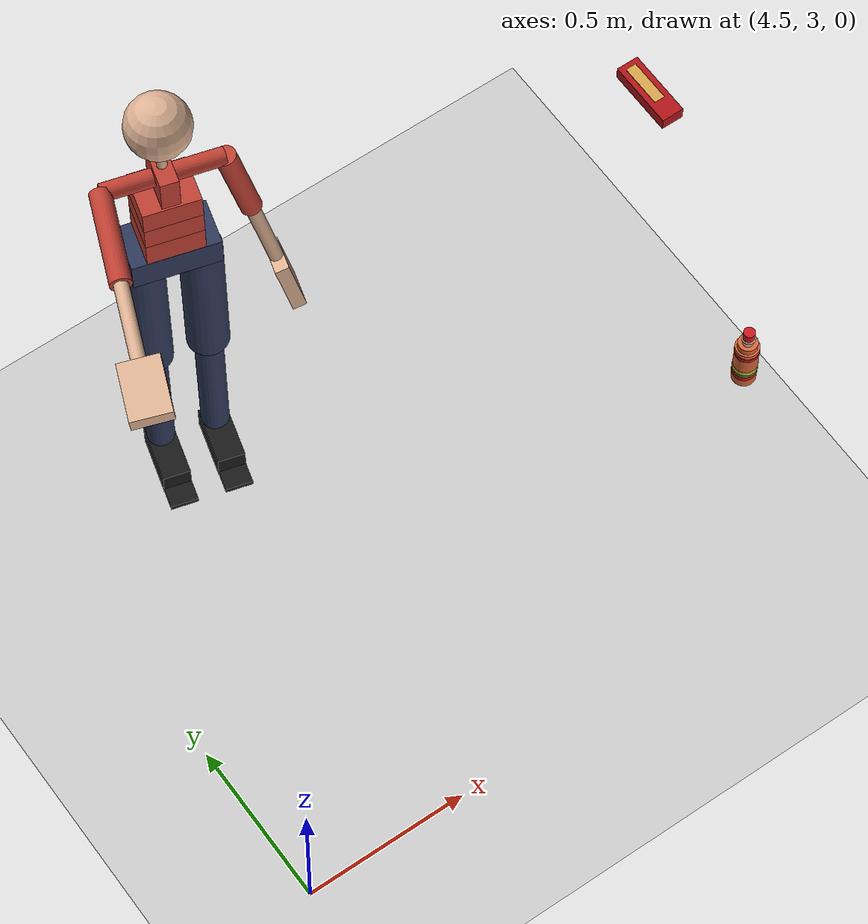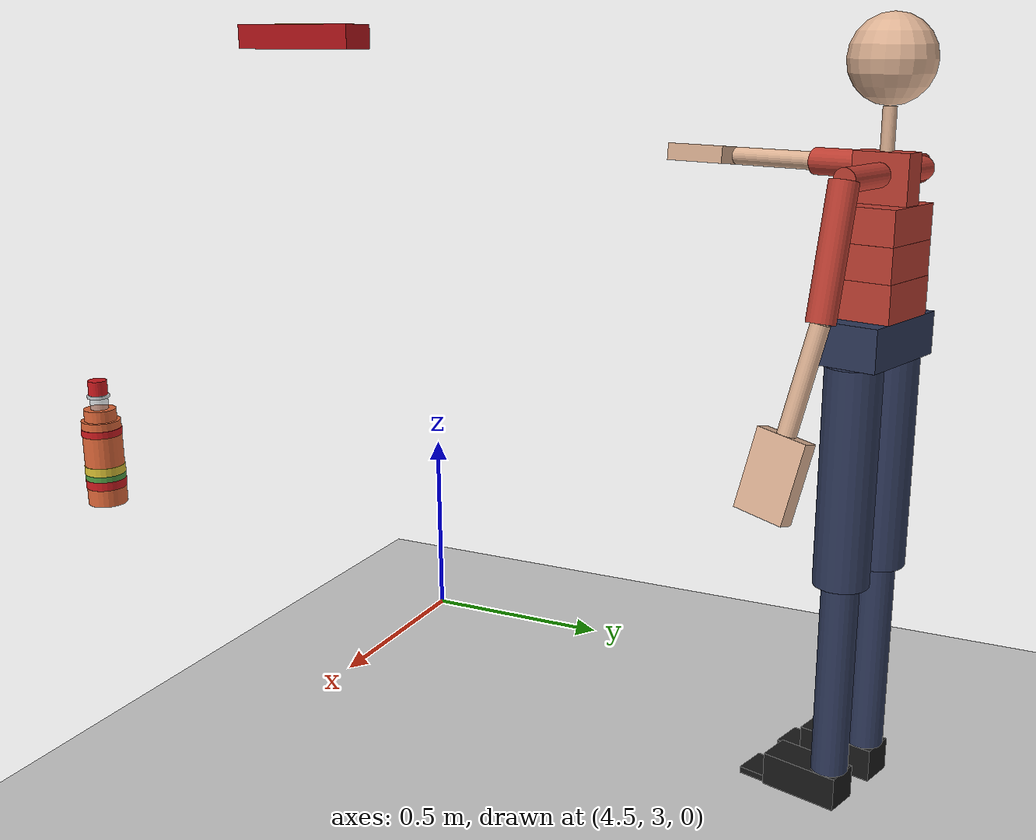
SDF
<sdf version="1.6">
 <world name="robocup_casa">
  <include><uri>model://sun</uri></include>
  <include><uri>model://ground_plane</uri></include>
  <model name="galletas_librero">
   <pose>6.050 3.700 1.621 0 0 1.571</pose>
   <link name="link">
    <inertial>
     <pose>0 0 0.0175 0 0 0</pose>
     <mass>0.13</mass>
     <inertia>
      <ixx>5.491e-05</ixx>
      <iyy>4.044e-04</iyy>
      <izz>4.327e-04</izz>
      <ixy>0</ixy>
      <ixz>0</ixz>
      <iyz>0</iyz>
     </inertia>
    </inertial>
    <collision name="c">
     <pose>0 0 0.0175 0 0 0</pose>
     <geometry><box><size>0.1900 0.0620 0.0350</size></box></geometry>
     <surface><friction><ode><mu>1.0</mu><mu2>1.0</mu2></ode></friction></surface>
    </collision>
    <visual name="v0">
     <pose>0 0 0.0175 0 0 0</pose>
     <geometry><box><size>0.1900 0.0620 0.0350</size></box></geometry>
     <material><ambient>0.70 0.08 0.10 1</ambient><diffuse>0.70 0.08 0.10 1</diffuse></material>
    </visual>
    <visual name="v1">
     <pose>0.02 0 0.0355 0 0 0</pose>
     <geometry><box><size>0.1200 0.0300 0.0010</size></box></geometry>
     <material><ambient>0.85 0.65 0.30 1</ambient><diffuse>0.85 0.65 0.30 1</diffuse></material>
    </visual>
   </link>
  </model>
  <model name="botella_librero">
   <pose>6.070 3.250 0.851 0 0 0.000</pose>
   <link name="link">
    <inertial>
     <pose>0 0 0.1100 0 0 0</pose>
     <mass>0.55</mass>
     <inertia>
      <ixx>2.368e-03</ixx>
      <iyy>2.368e-03</iyy>
      <izz>2.995e-04</izz>
      <ixy>0</ixy>
      <ixz>0</ixz>
      <iyz>0</iyz>
     </inertia>
    </inertial>
    <collision name="c">
     <pose>0 0 0.1100 0 0 0</pose>
     <geometry><cylinder><radius>0.0330</radius><length>0.2200</length></cylinder></geometry>
     <surface><friction><ode><mu>1.0</mu><mu2>1.0</mu2></ode></friction></surface>
    </collision>
    <visual name="v0">
     <pose>0 0 0.075 0 0 0</pose>
     <geometry><cylinder><radius>0.0330</radius><length>0.1500</length></cylinder></geometry>
     <material><ambient>0.86 0.40 0.22 1</ambient><diffuse>0.86 0.40 0.22 1</diffuse></material>
    </visual>
    <visual name="v1">
     <pose>0 0 0.16 0 0 0</pose>
     <geometry><cylinder><radius>0.0270</radius><length>0.0200</length></cylinder></geometry>
     <material><ambient>0.86 0.40 0.22 1</ambient><diffuse>0.86 0.40 0.22 1</diffuse></material>
    </visual>
    <visual name="v2">
     <pose>0 0 0.182 0 0 0</pose>
     <geometry><cylinder><radius>0.0150</radius><length>0.0250</length></cylinder></geometry>
     <transparency>0.4</transparency>
     <material><ambient>0.75 0.78 0.80 1</ambient><diffuse>0.75 0.78 0.80 1</diffuse></material>
    </visual>
    <visual name="v3">
     <pose>0 0 0.192 0 0 0</pose>
     <geometry><cylinder><radius>0.0190</radius><length>0.0040</length></cylinder></geometry>
     <transparency>0.2</transparency>
     <material><ambient>0.75 0.78 0.80 1</ambient><diffuse>0.75 0.78 0.80 1</diffuse></material>
    </visual>
    <visual name="v4">
     <pose>0 0 0.2075 0 0 0</pose>
     <geometry><cylinder><radius>0.0160</radius><length>0.0250</length></cylinder></geometry>
     <material><ambient>0.80 0.10 0.12 1</ambient><diffuse>0.80 0.10 0.12 1</diffuse></material>
    </visual>
    <visual name="v5">
     <pose>0 0 0.13 0 0 0</pose>
     <geometry><cylinder><radius>0.0340</radius><length>0.0120</length></cylinder></geometry>
     <material><ambient>0.80 0.10 0.12 1</ambient><diffuse>0.80 0.10 0.12 1</diffuse></material>
    </visual>
    <visual name="v6">
     <pose>0 0 0.0625 0 0 0</pose>
     <geometry><cylinder><radius>0.0340</radius><length>0.0150</length></cylinder></geometry>
     <material><ambient>0.85 0.75 0.20 1</ambient><diffuse>0.85 0.75 0.20 1</diffuse></material>
    </visual>
    <visual name="v7">
     <pose>0 0 0.05 0 0 0</pose>
     <geometry><cylinder><radius>0.0340</radius><length>0.0100</length></cylinder></geometry>
     <material><ambient>0.30 0.60 0.25 1</ambient><diffuse>0.30 0.60 0.25 1</diffuse></material>
    </visual>
    <visual name="v8">
     <pose>0 0 0.0375 0 0 0</pose>
     <geometry><cylinder><radius>0.0340</radius><length>0.0150</length></cylinder></geometry>
     <material><ambient>0.80 0.10 0.12 1</ambient><diffuse>0.80 0.10 0.12 1</diffuse></material>
    </visual>
   </link>
  </model>
  <model name="persona_librero">
   <static>true</static>
   <link name="cuerpo">
    <collision name="c0">
     <pose>5.0100 4.3500 1.0390 0.0000 -0.0000 -1.8370</pose>
     <geometry><box><size>0.1369 0.2488 0.0913</size></box></geometry>
    </collision>
    <visual name="v0_Pelvis">
     <pose>5.0100 4.3500 1.0390 0.0000 -0.0000 -1.8370</pose>
     <geometry><box><size>0.1369 0.2488 0.0913</size></box></geometry>
     <material><ambient>0.18 0.22 0.35 1</ambient><diffuse>0.18 0.22 0.35 1</diffuse></material>
    </visual>
    <collision name="c1">
     <pose>5.0101 4.3505 1.1254 0.0000 -0.0000 -1.8370</pose>
     <geometry><box><size>0.1369 0.1618 0.0817</size></box></geometry>
    </collision>
    <visual name="v1_L5">
     <pose>5.0101 4.3505 1.1254 0.0000 -0.0000 -1.8370</pose>
     <geometry><box><size>0.1369 0.1618 0.0817</size></box></geometry>
     <material><ambient>0.75 0.25 0.20 1</ambient><diffuse>0.75 0.25 0.20 1</diffuse></material>
    </visual>
    <collision name="c2">
     <pose>5.0099 4.3496 1.2031 0.0000 -0.0000 -1.8370</pose>
     <geometry><box><size>0.1369 0.1618 0.0737</size></box></geometry>
    </collision>
    <visual name="v2_L3">
     <pose>5.0099 4.3496 1.2031 0.0000 -0.0000 -1.8370</pose>
     <geometry><box><size>0.1369 0.1618 0.0737</size></box></geometry>
     <material><ambient>0.75 0.25 0.20 1</ambient><diffuse>0.75 0.25 0.20 1</diffuse></material>
    </visual>
    <collision name="c3">
     <pose>5.0099 4.3496 1.2769 0.0000 -0.0000 -1.8370</pose>
     <geometry><box><size>0.1369 0.1618 0.0737</size></box></geometry>
    </collision>
    <visual name="v3_T12">
     <pose>5.0099 4.3496 1.2769 0.0000 -0.0000 -1.8370</pose>
     <geometry><box><size>0.1369 0.1618 0.0737</size></box></geometry>
     <material><ambient>0.75 0.25 0.20 1</ambient><diffuse>0.75 0.25 0.20 1</diffuse></material>
    </visual>
    <collision name="c4">
     <pose>5.0099 4.3496 1.3659 0.0000 -0.0000 -1.8370</pose>
     <geometry><box><size>0.1254 0.0519 0.1042</size></box></geometry>
    </collision>
    <visual name="v4_T8">
     <pose>5.0099 4.3496 1.3659 0.0000 -0.0000 -1.8370</pose>
     <geometry><box><size>0.1254 0.0519 0.1042</size></box></geometry>
     <material><ambient>0.75 0.25 0.20 1</ambient><diffuse>0.75 0.25 0.20 1</diffuse></material>
    </visual>
    <collision name="c5">
     <pose>5.0099 4.3496 1.4617 0.0000 -0.0000 -1.8370</pose>
     <geometry><cylinder><radius>0.0141</radius><length>0.0874</length></cylinder></geometry>
    </collision>
    <visual name="v5_Neck">
     <pose>5.0099 4.3496 1.4617 0.0000 -0.0000 -1.8370</pose>
     <geometry><cylinder><radius>0.0141</radius><length>0.0874</length></cylinder></geometry>
     <material><ambient>0.87 0.70 0.58 1</ambient><diffuse>0.87 0.70 0.58 1</diffuse></material>
    </visual>
    <collision name="c6">
     <pose>5.0096 4.3486 1.5954 0.0000 -0.0000 -1.8370</pose>
     <geometry><sphere><radius>0.0899</radius></sphere></geometry>
    </collision>
    <visual name="v6_Head">
     <pose>5.0096 4.3486 1.5954 0.0000 -0.0000 -1.8370</pose>
     <geometry><sphere><radius>0.0899</radius></sphere></geometry>
     <material><ambient>0.87 0.70 0.58 1</ambient><diffuse>0.87 0.70 0.58 1</diffuse></material>
    </visual>
    <collision name="c7">
     <pose>4.9169 4.3749 1.3726 1.5708 -0.0000 -1.8370</pose>
     <geometry><cylinder><radius>0.0252</radius><length>0.1409</length></cylinder></geometry>
    </collision>
    <visual name="v7_RightShoulder">
     <pose>4.9169 4.3749 1.3726 1.5708 -0.0000 -1.8370</pose>
     <geometry><cylinder><radius>0.0252</radius><length>0.1409</length></cylinder></geometry>
     <material><ambient>0.75 0.25 0.20 1</ambient><diffuse>0.75 0.25 0.20 1</diffuse></material>
    </visual>
    <collision name="c8">
     <pose>4.7969 4.2656 1.3709 1.5829 -0.0993 -0.3876</pose>
     <geometry><cylinder><radius>0.0301</radius><length>0.2761</length></cylinder></geometry>
    </collision>
    <visual name="v8_RightUpperArm">
     <pose>4.7969 4.2656 1.3709 1.5829 -0.0993 -0.3876</pose>
     <geometry><cylinder><radius>0.0301</radius><length>0.2761</length></cylinder></geometry>
     <material><ambient>0.75 0.25 0.20 1</ambient><diffuse>0.75 0.25 0.20 1</diffuse></material>
    </visual>
    <collision name="c9">
     <pose>4.7020 4.0324 1.3679 1.5829 -0.0993 -0.3876</pose>
     <geometry><cylinder><radius>0.0201</radius><length>0.2274</length></cylinder></geometry>
    </collision>
    <visual name="v9_RightForeArm">
     <pose>4.7020 4.0324 1.3679 1.5829 -0.0993 -0.3876</pose>
     <geometry><cylinder><radius>0.0201</radius><length>0.2274</length></cylinder></geometry>
     <material><ambient>0.87 0.70 0.58 1</ambient><diffuse>0.87 0.70 0.58 1</diffuse></material>
    </visual>
    <collision name="c10">
     <pose>4.6270 3.8479 1.3655 0.0121 -0.0993 -0.3876</pose>
     <geometry><box><size>0.1139 0.1709 0.0401</size></box></geometry>
    </collision>
    <visual name="v10_RightHand">
     <pose>4.6270 3.8479 1.3655 0.0121 -0.0993 -0.3876</pose>
     <geometry><box><size>0.1139 0.1709 0.0401</size></box></geometry>
     <material><ambient>0.87 0.70 0.58 1</ambient><diffuse>0.87 0.70 0.58 1</diffuse></material>
    </visual>
    <collision name="c11">
     <pose>5.1029 4.3242 1.3726 1.5708 -0.0000 -1.8370</pose>
     <geometry><cylinder><radius>0.0252</radius><length>0.1409</length></cylinder></geometry>
    </collision>
    <visual name="v11_LeftShoulder">
     <pose>5.1029 4.3242 1.3726 1.5708 -0.0000 -1.8370</pose>
     <geometry><cylinder><radius>0.0252</radius><length>0.1409</length></cylinder></geometry>
     <material><ambient>0.75 0.25 0.20 1</ambient><diffuse>0.75 0.25 0.20 1</diffuse></material>
    </visual>
    <collision name="c12">
     <pose>5.2000 4.2977 1.2379 0.2208 -0.0000 -1.8370</pose>
     <geometry><cylinder><radius>0.0301</radius><length>0.2761</length></cylinder></geometry>
    </collision>
    <visual name="v12_LeftUpperArm">
     <pose>5.2000 4.2977 1.2379 0.2208 -0.0000 -1.8370</pose>
     <geometry><cylinder><radius>0.0301</radius><length>0.2761</length></cylinder></geometry>
     <material><ambient>0.75 0.25 0.20 1</ambient><diffuse>0.75 0.25 0.20 1</diffuse></material>
    </visual>
    <collision name="c13">
     <pose>5.2485 4.2669 0.9935 0.2232 -0.1463 -1.8701</pose>
     <geometry><cylinder><radius>0.0201</radius><length>0.2274</length></cylinder></geometry>
    </collision>
    <visual name="v13_LeftForeArm">
     <pose>5.2485 4.2669 0.9935 0.2232 -0.1463 -1.8701</pose>
     <geometry><cylinder><radius>0.0201</radius><length>0.2274</length></cylinder></geometry>
     <material><ambient>0.87 0.70 0.58 1</ambient><diffuse>0.87 0.70 0.58 1</diffuse></material>
    </visual>
    <collision name="c14">
     <pose>5.2823 4.2267 0.8013 -1.3476 -0.1463 -1.8701</pose>
     <geometry><box><size>0.1139 0.1709 0.0401</size></box></geometry>
    </collision>
    <visual name="v14_LeftHand">
     <pose>5.2823 4.2267 0.8013 -1.3476 -0.1463 -1.8701</pose>
     <geometry><box><size>0.1139 0.1709 0.0401</size></box></geometry>
     <material><ambient>0.87 0.70 0.58 1</ambient><diffuse>0.87 0.70 0.58 1</diffuse></material>
    </visual>
    <collision name="c15">
     <pose>4.9319 4.3710 0.7550 0.0000 -0.0000 -1.8370</pose>
     <geometry><cylinder><radius>0.0601</radius><length>0.4767</length></cylinder></geometry>
    </collision>
    <visual name="v15_RightUpperLeg">
     <pose>4.9319 4.3710 0.7550 0.0000 -0.0000 -1.8370</pose>
     <geometry><cylinder><radius>0.0601</radius><length>0.4767</length></cylinder></geometry>
     <material><ambient>0.18 0.22 0.35 1</ambient><diffuse>0.18 0.22 0.35 1</diffuse></material>
    </visual>
    <collision name="c16">
     <pose>4.9319 4.3710 0.2962 0.0000 -0.0000 -1.8370</pose>
     <geometry><cylinder><radius>0.0404</radius><length>0.4409</length></cylinder></geometry>
    </collision>
    <visual name="v16_RightLowerLeg">
     <pose>4.9319 4.3710 0.2962 0.0000 -0.0000 -1.8370</pose>
     <geometry><cylinder><radius>0.0404</radius><length>0.4409</length></cylinder></geometry>
     <material><ambient>0.18 0.22 0.35 1</ambient><diffuse>0.18 0.22 0.35 1</diffuse></material>
    </visual>
    <collision name="c17">
     <pose>4.9175 4.3185 0.0379 0.0000 -0.0000 -1.8370</pose>
     <geometry><box><size>0.1785 0.0809 0.0757</size></box></geometry>
    </collision>
    <visual name="v17_RightFoot">
     <pose>4.9175 4.3185 0.0379 0.0000 -0.0000 -1.8370</pose>
     <geometry><box><size>0.1785 0.0809 0.0757</size></box></geometry>
     <material><ambient>0.10 0.10 0.10 1</ambient><diffuse>0.10 0.10 0.10 1</diffuse></material>
    </visual>
    <collision name="c18">
     <pose>4.8860 4.2027 0.0119 0.0000 -0.0000 -1.8370</pose>
     <geometry><box><size>0.0615 0.0809 0.0145</size></box></geometry>
    </collision>
    <visual name="v18_RightToe">
     <pose>4.8860 4.2027 0.0119 0.0000 -0.0000 -1.8370</pose>
     <geometry><box><size>0.0615 0.0809 0.0145</size></box></geometry>
     <material><ambient>0.10 0.10 0.10 1</ambient><diffuse>0.10 0.10 0.10 1</diffuse></material>
    </visual>
    <collision name="c19">
     <pose>5.0880 4.3284 0.7550 0.0000 -0.0000 -1.8370</pose>
     <geometry><cylinder><radius>0.0601</radius><length>0.4767</length></cylinder></geometry>
    </collision>
    <visual name="v19_LeftUpperLeg">
     <pose>5.0880 4.3284 0.7550 0.0000 -0.0000 -1.8370</pose>
     <geometry><cylinder><radius>0.0601</radius><length>0.4767</length></cylinder></geometry>
     <material><ambient>0.18 0.22 0.35 1</ambient><diffuse>0.18 0.22 0.35 1</diffuse></material>
    </visual>
    <collision name="c20">
     <pose>5.0880 4.3284 0.2962 0.0000 -0.0000 -1.8370</pose>
     <geometry><cylinder><radius>0.0404</radius><length>0.4409</length></cylinder></geometry>
    </collision>
    <visual name="v20_LeftLowerLeg">
     <pose>5.0880 4.3284 0.2962 0.0000 -0.0000 -1.8370</pose>
     <geometry><cylinder><radius>0.0404</radius><length>0.4409</length></cylinder></geometry>
     <material><ambient>0.18 0.22 0.35 1</ambient><diffuse>0.18 0.22 0.35 1</diffuse></material>
    </visual>
    <collision name="c21">
     <pose>5.0736 4.2759 0.0379 0.0000 -0.0000 -1.8370</pose>
     <geometry><box><size>0.1785 0.0809 0.0757</size></box></geometry>
    </collision>
    <visual name="v21_LeftFoot">
     <pose>5.0736 4.2759 0.0379 0.0000 -0.0000 -1.8370</pose>
     <geometry><box><size>0.1785 0.0809 0.0757</size></box></geometry>
     <material><ambient>0.10 0.10 0.10 1</ambient><diffuse>0.10 0.10 0.10 1</diffuse></material>
    </visual>
    <collision name="c22">
     <pose>5.0421 4.1601 0.0119 0.0000 -0.0000 -1.8370</pose>
     <geometry><box><size>0.0615 0.0809 0.0145</size></box></geometry>
    </collision>
    <visual name="v22_LeftToe">
     <pose>5.0421 4.1601 0.0119 0.0000 -0.0000 -1.8370</pose>
     <geometry><box><size>0.0615 0.0809 0.0145</size></box></geometry>
     <material><ambient>0.10 0.10 0.10 1</ambient><diffuse>0.10 0.10 0.10 1</diffuse></material>
    </visual>
   </link>
  </model>
 </world>
</sdf>
